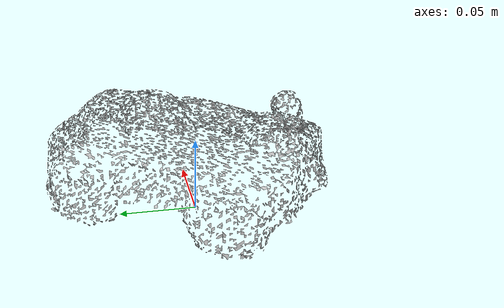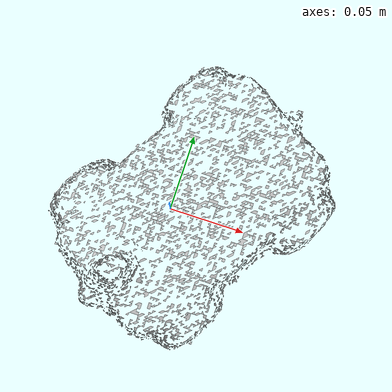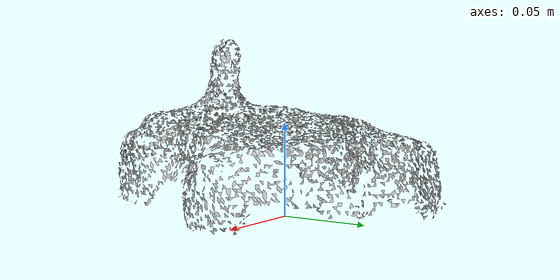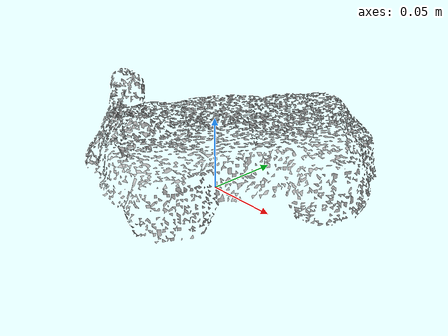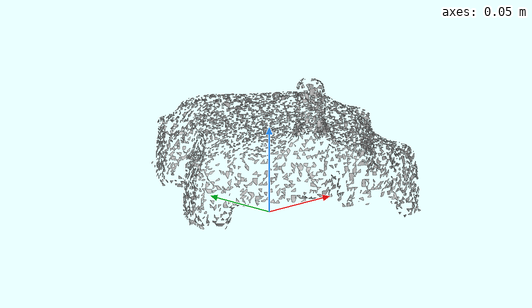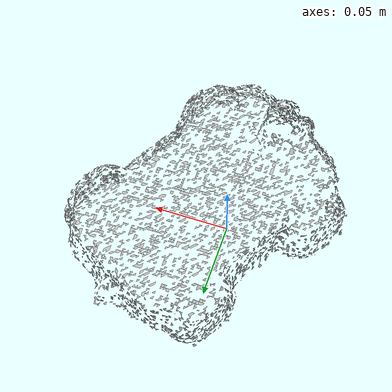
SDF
<?xml version='1.0'?>
<sdf version="1.4">
  <model name="m_lego_duplo">
    <static>false</static>
    <link name="link">
      <inertial>
        <pose>0.013570379509872301 0.002967125445406719 0.03712638948814567 3.137321300629087 -1.540255613218094 0.9815480322699612</pose>
        <mass>0.0006683685019536396</mass>
        <inertia>
          <ixx>2.1564816075912823e-06</ixx>
          <ixy>-5.111898203193475e-23</ixy>
          <ixz>-2.4156539684346058e-24</ixz>
          <iyy>1.3615728990921268e-06</iyy>
          <iyz>-1.8930658250079794e-22</iyz>
          <izz>6.662465749884092e-07</izz>
        </inertia>
      </inertial>
      <collision name="collision">
        <geometry>
          <mesh>
            <!-- Use a downsampled mesh for collisions -->
            <uri>model://073-m_lego_duplo/downsampled.obj</uri>
	        </mesh>
        </geometry>
        <surface>
      </surface>
      </collision>
      <visual name="visual">
        <geometry>
          <mesh>
            <uri>model://073-m_lego_duplo/tsdf/textured.obj</uri>
	        </mesh>
        </geometry>
        <material>
          <script>
            <uri>model://073-m_lego_duplo/m_lego_duplo.material</uri>
            <name>m_lego_duplo</name>
          </script>
        </material>
      </visual>
    </link>
  </model>
</sdf>
